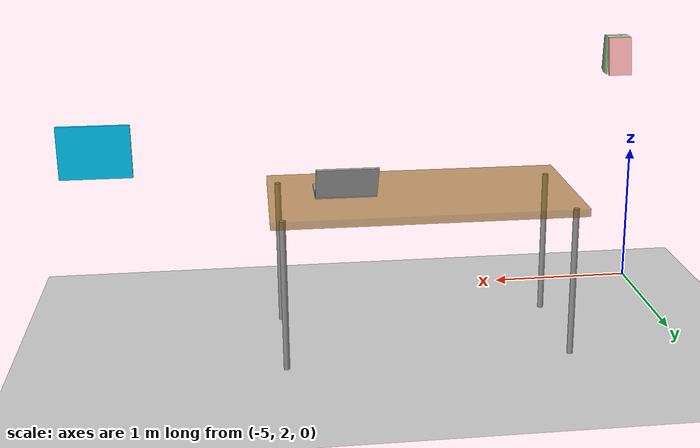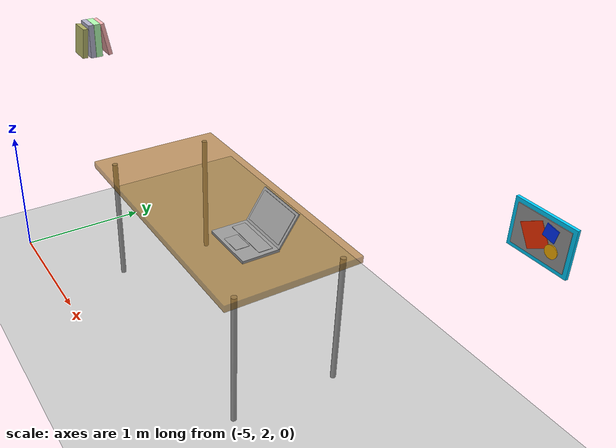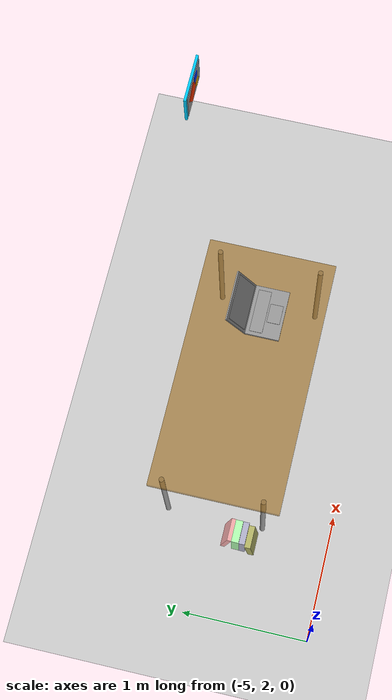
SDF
<sdf version="1.7">
 <world name="default">
  <model name="ground_plane">
   <static>1</static>
   <link name="link">
    <collision name="collision">
     <geometry><plane><normal>0 0 1</normal><size>100 100</size></plane></geometry>
     <surface>
      <contact><collide_bitmask>65535</collide_bitmask></contact>
      <friction><ode><mu>100</mu><mu2>50</mu2></ode></friction>
     </surface>
    </collision>
    <visual name="visual">
     <cast_shadows>0</cast_shadows>
     <geometry><plane><normal>0 0 1</normal><size>100 100</size></plane></geometry>
     <material>
      <script><uri>file://media/materials/scripts/gazebo.material</uri><name>Gazebo/Grey</name></script>
     </material>
    </visual>
   </link>
  </model>
  <model name="my_table_v2">
   <link name="link">
    <inertial>
     <mass>1</mass>
     <inertia>
      <ixx>0.166667</ixx>
      <ixy>0</ixy>
      <ixz>0</ixz>
      <iyy>0.166667</iyy>
      <iyz>0</iyz>
      <izz>0.166667</izz>
     </inertia>
    </inertial>
    <visual name="visual">
     <geometry><box><size>2 1 0.05</size></box></geometry>
     <material>
      <script><name>Gazebo/Grey</name><uri>file://media/materials/scripts/gazebo.material</uri></script>
      <shader type="pixel"><normal_map>__default__</normal_map></shader>
      <ambient>0.6 0.39 0.055 0.6</ambient>
      <diffuse>0.65 0.65 0.65 1</diffuse>
      <specular>0.01 0.01 0.01 1</specular>
      <emissive>0.1 0.1 0.1 1</emissive>
     </material>
     <pose>0 0 1 0 -0 0</pose>
    </visual>
    <collision name="collision">
     <pose>0 0 1 0 -0 0</pose>
     <geometry><box><size>2 1 0.05</size></box></geometry>
     <surface>
      <friction>
       <ode><mu>1</mu><mu2>1</mu2><fdir1>0 0 0</fdir1><slip1>0</slip1><slip2>0</slip2></ode>
       <torsional>
        <coefficient>1</coefficient>
        <patch_radius>0</patch_radius>
        <surface_radius>0</surface_radius>
        <use_patch_radius>1</use_patch_radius>
        <ode><slip>0</slip></ode>
       </torsional>
      </friction>
      <bounce><restitution_coefficient>0</restitution_coefficient><threshold>1e+06</threshold></bounce>
      <contact>
       <collide_without_contact>0</collide_without_contact>
       <collide_without_contact_bitmask>1</collide_without_contact_bitmask>
       <collide_bitmask>1</collide_bitmask>
       <ode>
        <soft_cfm>0</soft_cfm>
        <soft_erp>0.2</soft_erp>
        <kp>1e+13</kp>
        <kd>1</kd>
        <max_vel>0.01</max_vel>
        <min_depth>0</min_depth>
       </ode>
       <bullet>
        <split_impulse>1</split_impulse>
        <split_impulse_penetration_threshold>-0.01</split_impulse_penetration_threshold>
        <soft_cfm>0</soft_cfm>
        <soft_erp>0.2</soft_erp>
        <kp>1e+13</kp>
        <kd>1</kd>
       </bullet>
      </contact>
     </surface>
    </collision>
   </link>
   <link name="link_1">
    <inertial>
     <mass>1</mass>
     <inertia><ixx>0.145833</ixx><ixy>0</ixy><ixz>0</ixz><iyy>0.145833</iyy><iyz>0</iyz><izz>0.125</izz></inertia>
    </inertial>
    <pose>0.928374 -0.393621 0.5 0 -0 0</pose>
    <visual name="visual">
     <geometry><cylinder><radius>0.02</radius><length>1</length></cylinder></geometry>
     <material>
      <lighting>1</lighting>
      <script><uri>file://media/materials/scripts/gazebo.material</uri><name>Gazebo/Grey</name></script>
      <shader type="pixel"><normal_map>__default__</normal_map></shader>
      <ambient>0.5 0.5 0.5 1</ambient>
      <diffuse>0.8 0.8 0.8 1</diffuse>
      <specular>0.01 0.01 0.01 1</specular>
      <emissive>0 0 0 1</emissive>
     </material>
    </visual>
    <collision name="collision">
     <geometry><cylinder><radius>0.02</radius><length>0.75</length></cylinder></geometry>
     <surface>
      <friction>
       <ode><mu>1</mu><mu2>1</mu2><fdir1>0 0 0</fdir1><slip1>0</slip1><slip2>0</slip2></ode>
       <torsional>
        <coefficient>1</coefficient>
        <patch_radius>0</patch_radius>
        <surface_radius>0</surface_radius>
        <use_patch_radius>1</use_patch_radius>
        <ode><slip>0</slip></ode>
       </torsional>
      </friction>
      <bounce><restitution_coefficient>0</restitution_coefficient><threshold>1e+06</threshold></bounce>
      <contact>
       <collide_without_contact>0</collide_without_contact>
       <collide_without_contact_bitmask>1</collide_without_contact_bitmask>
       <collide_bitmask>1</collide_bitmask>
       <ode>
        <soft_cfm>0</soft_cfm>
        <soft_erp>0.2</soft_erp>
        <kp>1e+13</kp>
        <kd>1</kd>
        <max_vel>0.01</max_vel>
        <min_depth>0</min_depth>
       </ode>
       <bullet>
        <split_impulse>1</split_impulse>
        <split_impulse_penetration_threshold>-0.01</split_impulse_penetration_threshold>
        <soft_cfm>0</soft_cfm>
        <soft_erp>0.2</soft_erp>
        <kp>1e+13</kp>
        <kd>1</kd>
       </bullet>
      </contact>
     </surface>
    </collision>
   </link>
   <link name="link_1_clone_1">
    <inertial>
     <mass>1</mass>
     <inertia><ixx>0.145833</ixx><ixy>0</ixy><ixz>0</ixz><iyy>0.145833</iyy><iyz>0</iyz><izz>0.125</izz></inertia>
    </inertial>
    <pose>-0.927679 -0.365385 0.5 0 -0 0</pose>
    <visual name="visual">
     <geometry><cylinder><radius>0.02</radius><length>1</length></cylinder></geometry>
     <material>
      <lighting>1</lighting>
      <script><uri>file://media/materials/scripts/gazebo.material</uri><name>Gazebo/Grey</name></script>
      <shader type="pixel"><normal_map>__default__</normal_map></shader>
      <ambient>0.5 0.5 0.5 1</ambient>
      <diffuse>0.8 0.8 0.8 1</diffuse>
      <specular>0.01 0.01 0.01 1</specular>
      <emissive>0 0 0 1</emissive>
     </material>
    </visual>
    <collision name="collision">
     <geometry><cylinder><radius>0.02</radius><length>0.75</length></cylinder></geometry>
     <surface>
      <friction>
       <ode><mu>1</mu><mu2>1</mu2><fdir1>0 0 0</fdir1><slip1>0</slip1><slip2>0</slip2></ode>
       <torsional>
        <coefficient>1</coefficient>
        <patch_radius>0</patch_radius>
        <surface_radius>0</surface_radius>
        <use_patch_radius>1</use_patch_radius>
        <ode><slip>0</slip></ode>
       </torsional>
      </friction>
      <bounce><restitution_coefficient>0</restitution_coefficient><threshold>1e+06</threshold></bounce>
      <contact>
       <collide_without_contact>0</collide_without_contact>
       <collide_without_contact_bitmask>1</collide_without_contact_bitmask>
       <collide_bitmask>1</collide_bitmask>
       <ode>
        <soft_cfm>0</soft_cfm>
        <soft_erp>0.2</soft_erp>
        <kp>1e+13</kp>
        <kd>1</kd>
        <max_vel>0.01</max_vel>
        <min_depth>0</min_depth>
       </ode>
       <bullet>
        <split_impulse>1</split_impulse>
        <split_impulse_penetration_threshold>-0.01</split_impulse_penetration_threshold>
        <soft_cfm>0</soft_cfm>
        <soft_erp>0.2</soft_erp>
        <kp>1e+13</kp>
        <kd>1</kd>
       </bullet>
      </contact>
     </surface>
    </collision>
   </link>
   <link name="link_1_clone_1_clone">
    <inertial>
     <mass>1</mass>
     <inertia><ixx>0.145833</ixx><ixy>0</ixy><ixz>0</ixz><iyy>0.145833</iyy><iyz>0</iyz><izz>0.125</izz></inertia>
    </inertial>
    <pose>-0.933002 0.405987 0.5 0 -0 0</pose>
    <visual name="visual">
     <geometry><cylinder><radius>0.02</radius><length>1</length></cylinder></geometry>
     <material>
      <lighting>1</lighting>
      <script><uri>file://media/materials/scripts/gazebo.material</uri><name>Gazebo/Grey</name></script>
      <shader type="pixel"><normal_map>__default__</normal_map></shader>
      <ambient>0.5 0.5 0.5 1</ambient>
      <diffuse>0.8 0.8 0.8 1</diffuse>
      <specular>0.01 0.01 0.01 1</specular>
      <emissive>0 0 0 1</emissive>
     </material>
    </visual>
    <collision name="collision">
     <geometry><cylinder><radius>0.02</radius><length>0.75</length></cylinder></geometry>
     <surface>
      <friction>
       <ode><mu>1</mu><mu2>1</mu2><fdir1>0 0 0</fdir1><slip1>0</slip1><slip2>0</slip2></ode>
       <torsional>
        <coefficient>1</coefficient>
        <patch_radius>0</patch_radius>
        <surface_radius>0</surface_radius>
        <use_patch_radius>1</use_patch_radius>
        <ode><slip>0</slip></ode>
       </torsional>
      </friction>
      <bounce><restitution_coefficient>0</restitution_coefficient><threshold>1e+06</threshold></bounce>
      <contact>
       <collide_without_contact>0</collide_without_contact>
       <collide_without_contact_bitmask>1</collide_without_contact_bitmask>
       <collide_bitmask>1</collide_bitmask>
       <ode>
        <soft_cfm>0</soft_cfm>
        <soft_erp>0.2</soft_erp>
        <kp>1e+13</kp>
        <kd>1</kd>
        <max_vel>0.01</max_vel>
        <min_depth>0</min_depth>
       </ode>
       <bullet>
        <split_impulse>1</split_impulse>
        <split_impulse_penetration_threshold>-0.01</split_impulse_penetration_threshold>
        <soft_cfm>0</soft_cfm>
        <soft_erp>0.2</soft_erp>
        <kp>1e+13</kp>
        <kd>1</kd>
       </bullet>
      </contact>
     </surface>
    </collision>
   </link>
   <link name="link_1_clone_1_clone_0">
    <inertial>
     <mass>1</mass>
     <inertia><ixx>0.145833</ixx><ixy>0</ixy><ixz>0</ixz><iyy>0.145833</iyy><iyz>0</iyz><izz>0.125</izz></inertia>
    </inertial>
    <pose>0.924345 0.40229 0.5 0 -0 0</pose>
    <visual name="visual">
     <geometry><cylinder><radius>0.02</radius><length>1</length></cylinder></geometry>
     <material>
      <lighting>1</lighting>
      <script><uri>file://media/materials/scripts/gazebo.material</uri><name>Gazebo/Grey</name></script>
      <shader type="pixel"><normal_map>__default__</normal_map></shader>
      <ambient>0.5 0.5 0.5 1</ambient>
      <diffuse>0.8 0.8 0.8 1</diffuse>
      <specular>0.01 0.01 0.01 1</specular>
      <emissive>0 0 0 1</emissive>
     </material>
    </visual>
    <collision name="collision">
     <geometry><cylinder><radius>0.02</radius><length>0.75</length></cylinder></geometry>
     <surface>
      <friction>
       <ode><mu>1</mu><mu2>1</mu2><fdir1>0 0 0</fdir1><slip1>0</slip1><slip2>0</slip2></ode>
       <torsional>
        <coefficient>1</coefficient>
        <patch_radius>0</patch_radius>
        <surface_radius>0</surface_radius>
        <use_patch_radius>1</use_patch_radius>
        <ode><slip>0</slip></ode>
       </torsional>
      </friction>
      <bounce><restitution_coefficient>0</restitution_coefficient><threshold>1e+06</threshold></bounce>
      <contact>
       <collide_without_contact>0</collide_without_contact>
       <collide_without_contact_bitmask>1</collide_without_contact_bitmask>
       <collide_bitmask>1</collide_bitmask>
       <ode>
        <soft_cfm>0</soft_cfm>
        <soft_erp>0.2</soft_erp>
        <kp>1e+13</kp>
        <kd>1</kd>
        <max_vel>0.01</max_vel>
        <min_depth>0</min_depth>
       </ode>
       <bullet>
        <split_impulse>1</split_impulse>
        <split_impulse_penetration_threshold>-0.01</split_impulse_penetration_threshold>
        <soft_cfm>0</soft_cfm>
        <soft_erp>0.2</soft_erp>
        <kp>1e+13</kp>
        <kd>1</kd>
       </bullet>
      </contact>
     </surface>
    </collision>
   </link>
   <static>1</static>
   <pose>-3.28275 2.90424 0 0 -0 0</pose>
  </model>
  <model name="my_pc">
   <link name="link">
    <inertial>
     <mass>1</mass>
     <inertia>
      <ixx>0.166667</ixx>
      <ixy>0</ixy>
      <ixz>0</ixz>
      <iyy>0.166667</iyy>
      <iyz>0</iyz>
      <izz>0.166667</izz>
     </inertia>
    </inertial>
    <gravity>0</gravity>
    <visual name="visual">
     <geometry><box><size>0.4 0.27 0.02</size></box></geometry>
     <material>
      <script><name>Gazebo/Grey</name><uri>file://media/materials/scripts/gazebo.material</uri></script>
      <shader type="pixel"><normal_map>__default__</normal_map></shader>
      <ambient>0.6 0.6 0.6 0</ambient>
      <diffuse>0.6 0.6 0.6 1</diffuse>
      <specular>0.01 0.01 0.01 1</specular>
      <emissive>0 0 0 1</emissive>
     </material>
     <pose>0 0 1.035 0 -0 0</pose>
    </visual>
    <collision name="collision">
     <pose>0 0 1.035 0 -0 0</pose>
     <geometry><box><size>0.4 0.27 0.02</size></box></geometry>
     <surface>
      <friction>
       <ode><mu>1</mu><mu2>1</mu2><fdir1>0 0 0</fdir1><slip1>0</slip1><slip2>0</slip2></ode>
       <torsional>
        <coefficient>1</coefficient>
        <patch_radius>0</patch_radius>
        <surface_radius>0</surface_radius>
        <use_patch_radius>1</use_patch_radius>
        <ode><slip>0</slip></ode>
       </torsional>
      </friction>
      <bounce><restitution_coefficient>0</restitution_coefficient><threshold>1e+06</threshold></bounce>
      <contact>
       <collide_without_contact>0</collide_without_contact>
       <collide_without_contact_bitmask>1</collide_without_contact_bitmask>
       <collide_bitmask>1</collide_bitmask>
       <ode>
        <soft_cfm>0</soft_cfm>
        <soft_erp>0.2</soft_erp>
        <kp>1e+13</kp>
        <kd>1</kd>
        <max_vel>0.01</max_vel>
        <min_depth>0</min_depth>
       </ode>
       <bullet>
        <split_impulse>1</split_impulse>
        <split_impulse_penetration_threshold>-0.01</split_impulse_penetration_threshold>
        <soft_cfm>0</soft_cfm>
        <soft_erp>0.2</soft_erp>
        <kp>1e+13</kp>
        <kd>1</kd>
       </bullet>
      </contact>
     </surface>
    </collision>
   </link>
   <link name="link_clone">
    <inertial>
     <mass>1</mass>
     <inertia>
      <ixx>0.166667</ixx>
      <ixy>0</ixy>
      <ixz>0</ixz>
      <iyy>0.166667</iyy>
      <iyz>0</iyz>
      <izz>0.166667</izz>
     </inertia>
    </inertial>
    <pose>-0.00057 0.199611 0.109573 0 -0 0</pose>
    <visual name="visual">
     <geometry><box><size>0.4 0.27 0.012</size></box></geometry>
     <material>
      <script><name>Gazebo/Grey</name><uri>file://media/materials/scripts/gazebo.material</uri></script>
      <shader type="pixel"><normal_map>__default__</normal_map></shader>
      <ambient>0.6 0.6 0.6 0</ambient>
      <diffuse>0.6 0.6 0.6 1</diffuse>
      <specular>0.01 0.01 0.01 1</specular>
      <emissive>0 0 0 1</emissive>
     </material>
     <pose>0 0 1.035 1 -0 0</pose>
    </visual>
    <collision name="collision">
     <pose>0 0 1.035 1 -0 0</pose>
     <geometry><box><size>0.4 0.27 0.012</size></box></geometry>
     <surface>
      <friction>
       <ode><mu>1</mu><mu2>1</mu2><fdir1>0 0 0</fdir1><slip1>0</slip1><slip2>0</slip2></ode>
       <torsional>
        <coefficient>1</coefficient>
        <patch_radius>0</patch_radius>
        <surface_radius>0</surface_radius>
        <use_patch_radius>1</use_patch_radius>
        <ode><slip>0</slip></ode>
       </torsional>
      </friction>
      <bounce><restitution_coefficient>0</restitution_coefficient><threshold>1e+06</threshold></bounce>
      <contact>
       <collide_without_contact>0</collide_without_contact>
       <collide_without_contact_bitmask>1</collide_without_contact_bitmask>
       <collide_bitmask>1</collide_bitmask>
       <ode>
        <soft_cfm>0</soft_cfm>
        <soft_erp>0.2</soft_erp>
        <kp>1e+13</kp>
        <kd>1</kd>
        <max_vel>0.01</max_vel>
        <min_depth>0</min_depth>
       </ode>
       <bullet>
        <split_impulse>1</split_impulse>
        <split_impulse_penetration_threshold>-0.01</split_impulse_penetration_threshold>
        <soft_cfm>0</soft_cfm>
        <soft_erp>0.2</soft_erp>
        <kp>1e+13</kp>
        <kd>1</kd>
       </bullet>
      </contact>
     </surface>
    </collision>
   </link>
   <link name="link_clone_0">
    <inertial>
     <mass>1</mass>
     <inertia>
      <ixx>0.166667</ixx>
      <ixy>0</ixy>
      <ixz>0</ixz>
      <iyy>0.166667</iyy>
      <iyz>0</iyz>
      <izz>0.166667</izz>
     </inertia>
    </inertial>
    <pose>0.000615 -0.061904 0.007701 0 -0 0</pose>
    <visual name="visual">
     <geometry><box><size>0.15 0.1 0.01</size></box></geometry>
     <material>
      <script><name>Gazebo/Grey</name><uri>file://media/materials/scripts/gazebo.material</uri></script>
      <shader type="pixel"><normal_map>__default__</normal_map></shader>
      <ambient>0.8 0.8 0.8 0</ambient>
      <diffuse>0.8 0.8 0.8 1</diffuse>
      <specular>0.01 0.01 0.01 1</specular>
      <emissive>0 0 0 1</emissive>
     </material>
     <pose>0 0 1.035 0 -0 0</pose>
    </visual>
    <collision name="collision">
     <pose>0 0 1.035 0 -0 0</pose>
     <geometry><box><size>0.15 0.1 0.01</size></box></geometry>
     <surface>
      <friction>
       <ode><mu>1</mu><mu2>1</mu2><fdir1>0 0 0</fdir1><slip1>0</slip1><slip2>0</slip2></ode>
       <torsional>
        <coefficient>1</coefficient>
        <patch_radius>0</patch_radius>
        <surface_radius>0</surface_radius>
        <use_patch_radius>1</use_patch_radius>
        <ode><slip>0</slip></ode>
       </torsional>
      </friction>
      <bounce><restitution_coefficient>0</restitution_coefficient><threshold>1e+06</threshold></bounce>
      <contact>
       <collide_without_contact>0</collide_without_contact>
       <collide_without_contact_bitmask>1</collide_without_contact_bitmask>
       <collide_bitmask>1</collide_bitmask>
       <ode>
        <soft_cfm>0</soft_cfm>
        <soft_erp>0.2</soft_erp>
        <kp>1e+13</kp>
        <kd>1</kd>
        <max_vel>0.01</max_vel>
        <min_depth>0</min_depth>
       </ode>
       <bullet>
        <split_impulse>1</split_impulse>
        <split_impulse_penetration_threshold>-0.01</split_impulse_penetration_threshold>
        <soft_cfm>0</soft_cfm>
        <soft_erp>0.2</soft_erp>
        <kp>1e+13</kp>
        <kd>1</kd>
       </bullet>
      </contact>
     </surface>
    </collision>
   </link>
   <link name="link_clone_0_clone">
    <inertial>
     <mass>1</mass>
     <inertia>
      <ixx>0.166667</ixx>
      <ixy>0</ixy>
      <ixz>0</ixz>
      <iyy>0.166667</iyy>
      <iyz>0</iyz>
      <izz>0.166667</izz>
     </inertia>
    </inertial>
    <pose>-0.000829 0.051344 0.007701 0 -0 0</pose>
    <visual name="visual">
     <geometry><box><size>0.34 0.1 0.01</size></box></geometry>
     <material>
      <script><name>Gazebo/Grey</name><uri>file://media/materials/scripts/gazebo.material</uri></script>
      <shader type="pixel"><normal_map>__default__</normal_map></shader>
      <ambient>0.8 0.8 0.8 0</ambient>
      <diffuse>0.8 0.8 0.8 1</diffuse>
      <specular>0.01 0.01 0.01 1</specular>
      <emissive>0 0 0 1</emissive>
     </material>
     <pose>0 0 1.035 0 -0 0</pose>
    </visual>
    <collision name="collision">
     <pose>0 0 1.035 0 -0 0</pose>
     <geometry><box><size>0.34 0.1 0.01</size></box></geometry>
     <surface>
      <friction>
       <ode><mu>1</mu><mu2>1</mu2><fdir1>0 0 0</fdir1><slip1>0</slip1><slip2>0</slip2></ode>
       <torsional>
        <coefficient>1</coefficient>
        <patch_radius>0</patch_radius>
        <surface_radius>0</surface_radius>
        <use_patch_radius>1</use_patch_radius>
        <ode><slip>0</slip></ode>
       </torsional>
      </friction>
      <bounce><restitution_coefficient>0</restitution_coefficient><threshold>1e+06</threshold></bounce>
      <contact>
       <collide_without_contact>0</collide_without_contact>
       <collide_without_contact_bitmask>1</collide_without_contact_bitmask>
       <collide_bitmask>1</collide_bitmask>
       <ode>
        <soft_cfm>0</soft_cfm>
        <soft_erp>0.2</soft_erp>
        <kp>1e+13</kp>
        <kd>1</kd>
        <max_vel>0.01</max_vel>
        <min_depth>0</min_depth>
       </ode>
       <bullet>
        <split_impulse>1</split_impulse>
        <split_impulse_penetration_threshold>-0.01</split_impulse_penetration_threshold>
        <soft_cfm>0</soft_cfm>
        <soft_erp>0.2</soft_erp>
        <kp>1e+13</kp>
        <kd>1</kd>
       </bullet>
      </contact>
     </surface>
    </collision>
   </link>
   <link name="link_clone_clone">
    <inertial>
     <mass>1</mass>
     <inertia>
      <ixx>0.166667</ixx>
      <ixy>0</ixy>
      <ixz>0</ixz>
      <iyy>0.166667</iyy>
      <iyz>0</iyz>
      <izz>0.166667</izz>
     </inertia>
    </inertial>
    <pose>0.000975 0.199579 0.119418 0 -0 0</pose>
    <visual name="visual">
     <geometry><box><size>0.36 0.22 0.012</size></box></geometry>
     <material>
      <script><name>Gazebo/Grey</name><uri>file://media/materials/scripts/gazebo.material</uri></script>
      <shader type="pixel"><normal_map>__default__</normal_map></shader>
      <ambient>0.1 0.1 0.1 1</ambient>
      <diffuse>0.1 0.1 0.1 1</diffuse>
      <specular>0.01 0.01 0.01 1</specular>
      <emissive>0 0 0 1</emissive>
     </material>
     <pose>0 0 1.035 1 -0 0</pose>
    </visual>
    <collision name="collision">
     <pose>0 0 1.035 1 -0 0</pose>
     <geometry><box><size>0.4 0.27 0.012</size></box></geometry>
     <surface>
      <friction>
       <ode><mu>1</mu><mu2>1</mu2><fdir1>0 0 0</fdir1><slip1>0</slip1><slip2>0</slip2></ode>
       <torsional>
        <coefficient>1</coefficient>
        <patch_radius>0</patch_radius>
        <surface_radius>0</surface_radius>
        <use_patch_radius>1</use_patch_radius>
        <ode><slip>0</slip></ode>
       </torsional>
      </friction>
      <bounce><restitution_coefficient>0</restitution_coefficient><threshold>1e+06</threshold></bounce>
      <contact>
       <collide_without_contact>0</collide_without_contact>
       <collide_without_contact_bitmask>1</collide_without_contact_bitmask>
       <collide_bitmask>1</collide_bitmask>
       <ode>
        <soft_cfm>0</soft_cfm>
        <soft_erp>0.2</soft_erp>
        <kp>1e+13</kp>
        <kd>1</kd>
        <max_vel>0.01</max_vel>
        <min_depth>0</min_depth>
       </ode>
       <bullet>
        <split_impulse>1</split_impulse>
        <split_impulse_penetration_threshold>-0.01</split_impulse_penetration_threshold>
        <soft_cfm>0</soft_cfm>
        <soft_erp>0.2</soft_erp>
        <kp>1e+13</kp>
        <kd>1</kd>
       </bullet>
      </contact>
     </surface>
    </collision>
   </link>
   <static>1</static>
   <pose>-2.78267 2.83877 0 0 -0 0</pose>
  </model>
  <model name="my_books">
   <link name="link">
    <inertial>
     <mass>1</mass>
     <inertia>
      <ixx>0.166667</ixx>
      <ixy>0</ixy>
      <ixz>0</ixz>
      <iyy>0.166667</iyy>
      <iyz>0</iyz>
      <izz>0.166667</izz>
     </inertia>
     <pose>0 0 1.15 0 -0 0</pose>
    </inertial>
    <pose>0.17974 0 -0.00246 0 -0 0</pose>
    <visual name="visual">
     <geometry><box><size>0.03 0.15 0.25</size></box></geometry>
     <material>
      <script><name>Gazebo/Grey</name><uri>file://media/materials/scripts/gazebo.material</uri></script>
      <shader type="pixel"><normal_map>__default__</normal_map></shader>
      <ambient>0.6 0.45 0.3 1</ambient>
      <diffuse>1 0.7 0.7 1</diffuse>
      <specular>0.01 0.01 0.01 1</specular>
      <emissive>0 0 0 1</emissive>
     </material>
     <pose>0 0 1.15 0 0.2 0</pose>
    </visual>
    <collision name="collision">
     <pose>0 0 1.15 0 0.2 0</pose>
     <geometry><box><size>0.03 0.15 0.25</size></box></geometry>
     <surface>
      <friction>
       <ode><mu>1</mu><mu2>1</mu2><fdir1>0 0 0</fdir1><slip1>0</slip1><slip2>0</slip2></ode>
       <torsional>
        <coefficient>1</coefficient>
        <patch_radius>0</patch_radius>
        <surface_radius>0</surface_radius>
        <use_patch_radius>1</use_patch_radius>
        <ode><slip>0</slip></ode>
       </torsional>
      </friction>
      <bounce><restitution_coefficient>0</restitution_coefficient><threshold>1e+06</threshold></bounce>
      <contact>
       <collide_without_contact>0</collide_without_contact>
       <collide_without_contact_bitmask>1</collide_without_contact_bitmask>
       <collide_bitmask>1</collide_bitmask>
       <ode>
        <soft_cfm>0</soft_cfm>
        <soft_erp>0.2</soft_erp>
        <kp>1e+13</kp>
        <kd>1</kd>
        <max_vel>0.01</max_vel>
        <min_depth>0</min_depth>
       </ode>
       <bullet>
        <split_impulse>1</split_impulse>
        <split_impulse_penetration_threshold>-0.01</split_impulse_penetration_threshold>
        <soft_cfm>0</soft_cfm>
        <soft_erp>0.2</soft_erp>
        <kp>1e+13</kp>
        <kd>1</kd>
       </bullet>
      </contact>
     </surface>
    </collision>
   </link>
   <link name="link_clone">
    <inertial>
     <mass>1</mass>
     <inertia>
      <ixx>0.166667</ixx>
      <ixy>0</ixy>
      <ixz>0</ixz>
      <iyy>0.166667</iyy>
      <iyz>0</iyz>
      <izz>0.166667</izz>
     </inertia>
     <pose>0 0 1.15 0 -0 0</pose>
    </inertial>
    <pose>0.243198 -0.002133 -0.00246 1e-05 -0 0</pose>
    <visual name="visual">
     <geometry><box><size>0.05 0.15 0.25</size></box></geometry>
     <material>
      <script><name>Gazebo/Grey</name><uri>file://media/materials/scripts/gazebo.material</uri></script>
      <shader type="pixel"><normal_map>__default__</normal_map></shader>
      <ambient>0.3 0.5 0.3 1</ambient>
      <diffuse>0.7 1 0.7 1</diffuse>
      <specular>0.01 0.01 0.01 1</specular>
      <emissive>0 0 0 1</emissive>
     </material>
     <pose>0 0 1.15 0 -0 0</pose>
    </visual>
    <collision name="collision">
     <pose>0 0 1.15 0 -0 0</pose>
     <geometry><box><size>0.05 0.15 0.25</size></box></geometry>
     <surface>
      <friction>
       <ode><mu>1</mu><mu2>1</mu2><fdir1>0 0 0</fdir1><slip1>0</slip1><slip2>0</slip2></ode>
       <torsional>
        <coefficient>1</coefficient>
        <patch_radius>0</patch_radius>
        <surface_radius>0</surface_radius>
        <use_patch_radius>1</use_patch_radius>
        <ode><slip>0</slip></ode>
       </torsional>
      </friction>
      <bounce><restitution_coefficient>0</restitution_coefficient><threshold>1e+06</threshold></bounce>
      <contact>
       <collide_without_contact>0</collide_without_contact>
       <collide_without_contact_bitmask>1</collide_without_contact_bitmask>
       <collide_bitmask>1</collide_bitmask>
       <ode>
        <soft_cfm>0</soft_cfm>
        <soft_erp>0.2</soft_erp>
        <kp>1e+13</kp>
        <kd>1</kd>
        <max_vel>0.01</max_vel>
        <min_depth>0</min_depth>
       </ode>
       <bullet>
        <split_impulse>1</split_impulse>
        <split_impulse_penetration_threshold>-0.01</split_impulse_penetration_threshold>
        <soft_cfm>0</soft_cfm>
        <soft_erp>0.2</soft_erp>
        <kp>1e+13</kp>
        <kd>1</kd>
       </bullet>
      </contact>
     </surface>
    </collision>
   </link>
   <link name="link_clone_clone">
    <inertial>
     <mass>1</mass>
     <inertia>
      <ixx>0.166667</ixx>
      <ixy>0</ixy>
      <ixz>0</ixz>
      <iyy>0.166667</iyy>
      <iyz>0</iyz>
      <izz>0.166667</izz>
     </inertia>
     <pose>0 0 1.15 0 -0 0</pose>
    </inertial>
    <pose>0.289882 -0.003921 -0.00246 2e-05 -0 0</pose>
    <visual name="visual">
     <geometry><box><size>0.04 0.15 0.25</size></box></geometry>
     <material>
      <script><name>Gazebo/Grey</name><uri>file://media/materials/scripts/gazebo.material</uri></script>
      <shader type="pixel"><normal_map>__default__</normal_map></shader>
      <ambient>0.3 0.3 0.8 1</ambient>
      <diffuse>0.7 0.7 0.8 1</diffuse>
      <specular>0.01 0.01 0.01 1</specular>
      <emissive>0 0 0 1</emissive>
     </material>
     <pose>0 0 1.15 0 -0 0</pose>
    </visual>
    <collision name="collision">
     <pose>0 0 1.15 0 -0 0</pose>
     <geometry><box><size>0.04 0.15 0.25</size></box></geometry>
     <surface>
      <friction>
       <ode><mu>1</mu><mu2>1</mu2><fdir1>0 0 0</fdir1><slip1>0</slip1><slip2>0</slip2></ode>
       <torsional>
        <coefficient>1</coefficient>
        <patch_radius>0</patch_radius>
        <surface_radius>0</surface_radius>
        <use_patch_radius>1</use_patch_radius>
        <ode><slip>0</slip></ode>
       </torsional>
      </friction>
      <bounce><restitution_coefficient>0</restitution_coefficient><threshold>1e+06</threshold></bounce>
      <contact>
       <collide_without_contact>0</collide_without_contact>
       <collide_without_contact_bitmask>1</collide_without_contact_bitmask>
       <collide_bitmask>1</collide_bitmask>
       <ode>
        <soft_cfm>0</soft_cfm>
        <soft_erp>0.2</soft_erp>
        <kp>1e+13</kp>
        <kd>1</kd>
        <max_vel>0.01</max_vel>
        <min_depth>0</min_depth>
       </ode>
       <bullet>
        <split_impulse>1</split_impulse>
        <split_impulse_penetration_threshold>-0.01</split_impulse_penetration_threshold>
        <soft_cfm>0</soft_cfm>
        <soft_erp>0.2</soft_erp>
        <kp>1e+13</kp>
        <kd>1</kd>
       </bullet>
      </contact>
     </surface>
    </collision>
   </link>
   <link name="link_clone_clone_clone">
    <inertial>
     <mass>1</mass>
     <inertia>
      <ixx>0.166667</ixx>
      <ixy>0</ixy>
      <ixz>0</ixz>
      <iyy>0.166667</iyy>
      <iyz>0</iyz>
      <izz>0.166667</izz>
     </inertia>
     <pose>0 0 1.15 0 -0 0</pose>
    </inertial>
    <pose>0.341401 -0.014976 -0.013259 3e-05 -0 0</pose>
    <visual name="visual">
     <geometry><box><size>0.04 0.15 0.22</size></box></geometry>
     <material>
      <script><name>Gazebo/Grey</name><uri>file://media/materials/scripts/gazebo.material</uri></script>
      <shader type="pixel"><normal_map>__default__</normal_map></shader>
      <ambient>0.8 0.5 0.1 1</ambient>
      <diffuse>0.7 0.7 0.4 1</diffuse>
      <specular>0.01 0.01 0.01 1</specular>
      <emissive>0 0 0 1</emissive>
     </material>
     <pose>0 0 1.15 0 -0.1 0</pose>
    </visual>
    <collision name="collision">
     <pose>0 0 1.15 0 -0.1 0</pose>
     <geometry><box><size>0.04 0.15 0.22</size></box></geometry>
     <surface>
      <friction>
       <ode><mu>1</mu><mu2>1</mu2><fdir1>0 0 0</fdir1><slip1>0</slip1><slip2>0</slip2></ode>
       <torsional>
        <coefficient>1</coefficient>
        <patch_radius>0</patch_radius>
        <surface_radius>0</surface_radius>
        <use_patch_radius>1</use_patch_radius>
        <ode><slip>0</slip></ode>
       </torsional>
      </friction>
      <bounce><restitution_coefficient>0</restitution_coefficient><threshold>1e+06</threshold></bounce>
      <contact>
       <collide_without_contact>0</collide_without_contact>
       <collide_without_contact_bitmask>1</collide_without_contact_bitmask>
       <collide_bitmask>1</collide_bitmask>
       <ode>
        <soft_cfm>0</soft_cfm>
        <soft_erp>0.2</soft_erp>
        <kp>1e+13</kp>
        <kd>1</kd>
        <max_vel>0.01</max_vel>
        <min_depth>0</min_depth>
       </ode>
       <bullet>
        <split_impulse>1</split_impulse>
        <split_impulse_penetration_threshold>-0.01</split_impulse_penetration_threshold>
        <soft_cfm>0</soft_cfm>
        <soft_erp>0.2</soft_erp>
        <kp>1e+13</kp>
        <kd>1</kd>
       </bullet>
      </contact>
     </surface>
    </collision>
   </link>
   <static>1</static>
   <pose>-4.64667 2.87083 0.69783 0 0 -1.5708</pose>
  </model>
  <model name="my_frame">
   <link name="link">
    <inertial>
     <mass>1</mass>
     <inertia>
      <ixx>0.166667</ixx>
      <ixy>0</ixy>
      <ixz>0</ixz>
      <iyy>0.166667</iyy>
      <iyz>0</iyz>
      <izz>0.166667</izz>
     </inertia>
    </inertial>
    <gravity>0</gravity>
    <visual name="visual">
     <geometry><box><size>0.02 0.4 0.3</size></box></geometry>
     <material>
      <script><name>Gazebo/Grey</name><uri>file://media/materials/scripts/gazebo.material</uri></script>
      <shader type="pixel"><normal_map>__default__</normal_map></shader>
      <ambient>0 0.81 1 1</ambient>
      <diffuse>0.7 0.7 0.7 1</diffuse>
      <specular>0.01 0.01 0.01 1</specular>
      <emissive>0 0 0 1</emissive>
     </material>
    </visual>
    <collision name="collision">
     <geometry><box><size>0.02 0.4 0.3</size></box></geometry>
     <surface>
      <friction>
       <ode><mu>1</mu><mu2>1</mu2><fdir1>0 0 0</fdir1><slip1>0</slip1><slip2>0</slip2></ode>
       <torsional>
        <coefficient>1</coefficient>
        <patch_radius>0</patch_radius>
        <surface_radius>0</surface_radius>
        <use_patch_radius>1</use_patch_radius>
        <ode><slip>0</slip></ode>
       </torsional>
      </friction>
      <bounce><restitution_coefficient>0</restitution_coefficient><threshold>1e+06</threshold></bounce>
      <contact>
       <collide_without_contact>0</collide_without_contact>
       <collide_without_contact_bitmask>1</collide_without_contact_bitmask>
       <collide_bitmask>1</collide_bitmask>
       <ode>
        <soft_cfm>0</soft_cfm>
        <soft_erp>0.2</soft_erp>
        <kp>1e+13</kp>
        <kd>1</kd>
        <max_vel>0.01</max_vel>
        <min_depth>0</min_depth>
       </ode>
       <bullet>
        <split_impulse>1</split_impulse>
        <split_impulse_penetration_threshold>-0.01</split_impulse_penetration_threshold>
        <soft_cfm>0</soft_cfm>
        <soft_erp>0.2</soft_erp>
        <kp>1e+13</kp>
        <kd>1</kd>
       </bullet>
      </contact>
     </surface>
    </collision>
   </link>
   <link name="link_2">
    <inertial>
     <mass>1</mass>
     <inertia><ixx>0.145833</ixx><ixy>0</ixy><ixz>0</ixz><iyy>0.145833</iyy><iyz>0</iyz><izz>0.125</izz></inertia>
    </inertial>
    <pose>0.015889 0.084711 -0.037956 0 -0 0</pose>
    <gravity>0</gravity>
    <visual name="visual">
     <pose>0 0 0 0 1.5707 0</pose>
     <geometry><cylinder><radius>0.04</radius><length>0.01</length></cylinder></geometry>
     <material>
      <lighting>1</lighting>
      <script><uri>file://media/materials/scripts/gazebo.material</uri><name>Gazebo/Grey</name></script>
      <shader type="pixel"><normal_map>__default__</normal_map></shader>
      <ambient>0.99 0.7 0 1</ambient>
      <diffuse>0.7 0.7 0.7 1</diffuse>
      <specular>0.01 0.01 0.01 1</specular>
      <emissive>0 0 0 1</emissive>
     </material>
    </visual>
    <collision name="collision">
     <pose>0 0 0 0 1.5707 0</pose>
     <geometry><cylinder><radius>0.04</radius><length>0.01</length></cylinder></geometry>
     <surface>
      <friction>
       <ode><mu>1</mu><mu2>1</mu2><fdir1>0 0 0</fdir1><slip1>0</slip1><slip2>0</slip2></ode>
       <torsional>
        <coefficient>1</coefficient>
        <patch_radius>0</patch_radius>
        <surface_radius>0</surface_radius>
        <use_patch_radius>1</use_patch_radius>
        <ode><slip>0</slip></ode>
       </torsional>
      </friction>
      <bounce><restitution_coefficient>0</restitution_coefficient><threshold>1e+06</threshold></bounce>
      <contact>
       <collide_without_contact>0</collide_without_contact>
       <collide_without_contact_bitmask>1</collide_without_contact_bitmask>
       <collide_bitmask>1</collide_bitmask>
       <ode>
        <soft_cfm>0</soft_cfm>
        <soft_erp>0.2</soft_erp>
        <kp>1e+13</kp>
        <kd>1</kd>
        <max_vel>0.01</max_vel>
        <min_depth>0</min_depth>
       </ode>
       <bullet>
        <split_impulse>1</split_impulse>
        <split_impulse_penetration_threshold>-0.01</split_impulse_penetration_threshold>
        <soft_cfm>0</soft_cfm>
        <soft_erp>0.2</soft_erp>
        <kp>1e+13</kp>
        <kd>1</kd>
       </bullet>
      </contact>
     </surface>
    </collision>
   </link>
   <link name="link_3">
    <inertial>
     <mass>1</mass>
     <inertia>
      <ixx>0.166667</ixx>
      <ixy>0</ixy>
      <ixz>0</ixz>
      <iyy>0.166667</iyy>
      <iyz>0</iyz>
      <izz>0.166667</izz>
     </inertia>
    </inertial>
    <pose>0.013898 -0.032005 0 0 -0 0</pose>
    <gravity>0</gravity>
    <visual name="visual">
     <pose>0 0 0 0.54 -0 0</pose>
     <geometry><box><size>0.01 0.15 0.15</size></box></geometry>
     <material>
      <lighting>1</lighting>
      <script><uri>file://media/materials/scripts/gazebo.material</uri><name>Gazebo/Grey</name></script>
      <shader type="pixel"><normal_map>__default__</normal_map></shader>
      <ambient>1 0.2 0 1</ambient>
      <diffuse>0.7 0.7 0.7 1</diffuse>
      <specular>0.01 0.01 0.01 1</specular>
      <emissive>0 0 0 1</emissive>
     </material>
    </visual>
    <collision name="collision">
     <pose>0 0 0 0.54 -0 0</pose>
     <geometry><box><size>0.01 0.15 0.15</size></box></geometry>
     <surface>
      <friction>
       <ode><mu>1</mu><mu2>1</mu2><fdir1>0 0 0</fdir1><slip1>0</slip1><slip2>0</slip2></ode>
       <torsional>
        <coefficient>1</coefficient>
        <patch_radius>0</patch_radius>
        <surface_radius>0</surface_radius>
        <use_patch_radius>1</use_patch_radius>
        <ode><slip>0</slip></ode>
       </torsional>
      </friction>
      <bounce><restitution_coefficient>0</restitution_coefficient><threshold>1e+06</threshold></bounce>
      <contact>
       <collide_without_contact>0</collide_without_contact>
       <collide_without_contact_bitmask>1</collide_without_contact_bitmask>
       <collide_bitmask>1</collide_bitmask>
       <ode>
        <soft_cfm>0</soft_cfm>
        <soft_erp>0.2</soft_erp>
        <kp>1e+13</kp>
        <kd>1</kd>
        <max_vel>0.01</max_vel>
        <min_depth>0</min_depth>
       </ode>
       <bullet>
        <split_impulse>1</split_impulse>
        <split_impulse_penetration_threshold>-0.01</split_impulse_penetration_threshold>
        <soft_cfm>0</soft_cfm>
        <soft_erp>0.2</soft_erp>
        <kp>1e+13</kp>
        <kd>1</kd>
       </bullet>
      </contact>
     </surface>
    </collision>
   </link>
   <link name="link_3_clone">
    <inertial>
     <mass>1</mass>
     <inertia>
      <ixx>0.166667</ixx>
      <ixy>0</ixy>
      <ixz>0</ixz>
      <iyy>0.166667</iyy>
      <iyz>0</iyz>
      <izz>0.166667</izz>
     </inertia>
    </inertial>
    <pose>0.015334 0.059714 0.061338 0 -0 0</pose>
    <gravity>0</gravity>
    <visual name="visual">
     <pose>0 0 0 -0.2 0 0</pose>
     <geometry><box><size>0.01 0.08 0.08</size></box></geometry>
     <material>
      <lighting>1</lighting>
      <script><uri>file://media/materials/scripts/gazebo.material</uri><name>Gazebo/Grey</name></script>
      <shader type="pixel"><normal_map>__default__</normal_map></shader>
      <ambient>0 0.2 1 1</ambient>
      <diffuse>0.7 0.7 0.7 1</diffuse>
      <specular>0.01 0.01 0.01 1</specular>
      <emissive>0 0 0 1</emissive>
     </material>
    </visual>
    <collision name="collision">
     <pose>0 0 0 -0.2 0 0</pose>
     <geometry><box><size>0.01 0.08 0.08</size></box></geometry>
     <surface>
      <friction>
       <ode><mu>1</mu><mu2>1</mu2><fdir1>0 0 0</fdir1><slip1>0</slip1><slip2>0</slip2></ode>
       <torsional>
        <coefficient>1</coefficient>
        <patch_radius>0</patch_radius>
        <surface_radius>0</surface_radius>
        <use_patch_radius>1</use_patch_radius>
        <ode><slip>0</slip></ode>
       </torsional>
      </friction>
      <bounce><restitution_coefficient>0</restitution_coefficient><threshold>1e+06</threshold></bounce>
      <contact>
       <collide_without_contact>0</collide_without_contact>
       <collide_without_contact_bitmask>1</collide_without_contact_bitmask>
       <collide_bitmask>1</collide_bitmask>
       <ode>
        <soft_cfm>0</soft_cfm>
        <soft_erp>0.2</soft_erp>
        <kp>1e+13</kp>
        <kd>1</kd>
        <max_vel>0.01</max_vel>
        <min_depth>0</min_depth>
       </ode>
       <bullet>
        <split_impulse>1</split_impulse>
        <split_impulse_penetration_threshold>-0.01</split_impulse_penetration_threshold>
        <soft_cfm>0</soft_cfm>
        <soft_erp>0.2</soft_erp>
        <kp>1e+13</kp>
        <kd>1</kd>
       </bullet>
      </contact>
     </surface>
    </collision>
   </link>
   <link name="link_clone">
    <inertial>
     <mass>1</mass>
     <inertia>
      <ixx>0.166667</ixx>
      <ixy>0</ixy>
      <ixz>0</ixz>
      <iyy>0.166667</iyy>
      <iyz>0</iyz>
      <izz>0.166667</izz>
     </inertia>
    </inertial>
    <pose>0.005108 0.000801 0 0 -0 0</pose>
    <gravity>0</gravity>
    <visual name="visual">
     <geometry><box><size>0.02 0.35 0.25</size></box></geometry>
     <material>
      <script><name>Gazebo/Grey</name><uri>file://media/materials/scripts/gazebo.material</uri></script>
      <shader type="pixel"><normal_map>__default__</normal_map></shader>
      <ambient>1 1 1 1</ambient>
      <diffuse>1 1 1 1</diffuse>
      <specular>0.01 0.01 0.01 1</specular>
      <emissive>0 0 0 1</emissive>
     </material>
    </visual>
    <collision name="collision">
     <geometry><box><size>0.02 0.4 0.3</size></box></geometry>
     <surface>
      <friction>
       <ode><mu>1</mu><mu2>1</mu2><fdir1>0 0 0</fdir1><slip1>0</slip1><slip2>0</slip2></ode>
       <torsional>
        <coefficient>1</coefficient>
        <patch_radius>0</patch_radius>
        <surface_radius>0</surface_radius>
        <use_patch_radius>1</use_patch_radius>
        <ode><slip>0</slip></ode>
       </torsional>
      </friction>
      <bounce><restitution_coefficient>0</restitution_coefficient><threshold>1e+06</threshold></bounce>
      <contact>
       <collide_without_contact>0</collide_without_contact>
       <collide_without_contact_bitmask>1</collide_without_contact_bitmask>
       <collide_bitmask>1</collide_bitmask>
       <ode>
        <soft_cfm>0</soft_cfm>
        <soft_erp>0.2</soft_erp>
        <kp>1e+13</kp>
        <kd>1</kd>
        <max_vel>0.01</max_vel>
        <min_depth>0</min_depth>
       </ode>
       <bullet>
        <split_impulse>1</split_impulse>
        <split_impulse_penetration_threshold>-0.01</split_impulse_penetration_threshold>
        <soft_cfm>0</soft_cfm>
        <soft_erp>0.2</soft_erp>
        <kp>1e+13</kp>
        <kd>1</kd>
       </bullet>
      </contact>
     </surface>
    </collision>
   </link>
   <static>1</static>
   <pose>-1.3345 3.76437 1.6 0 0 -1.5708</pose>
  </model>
 </world>
</sdf>
